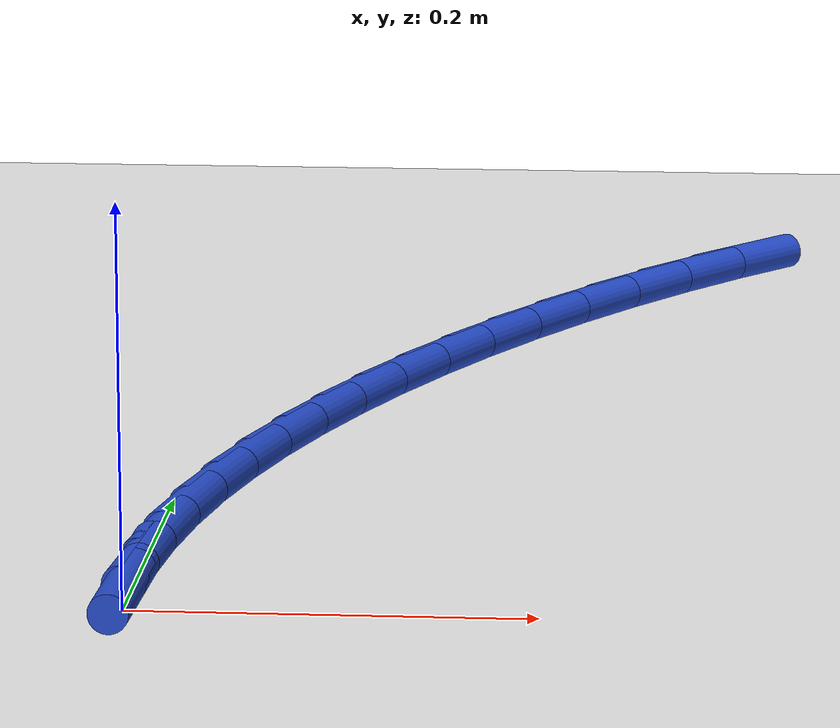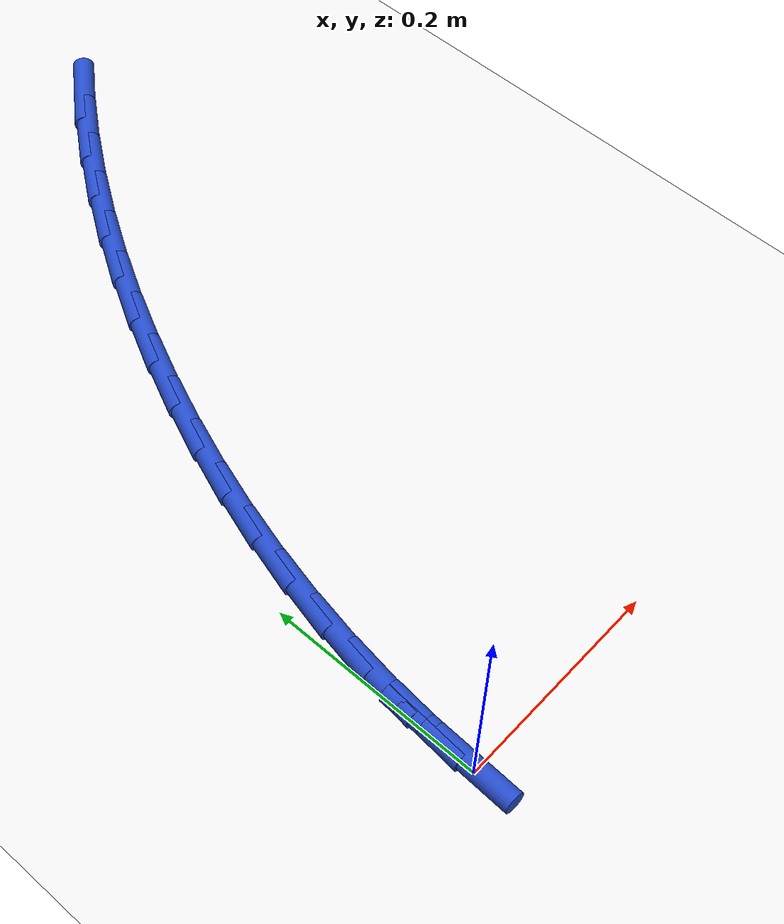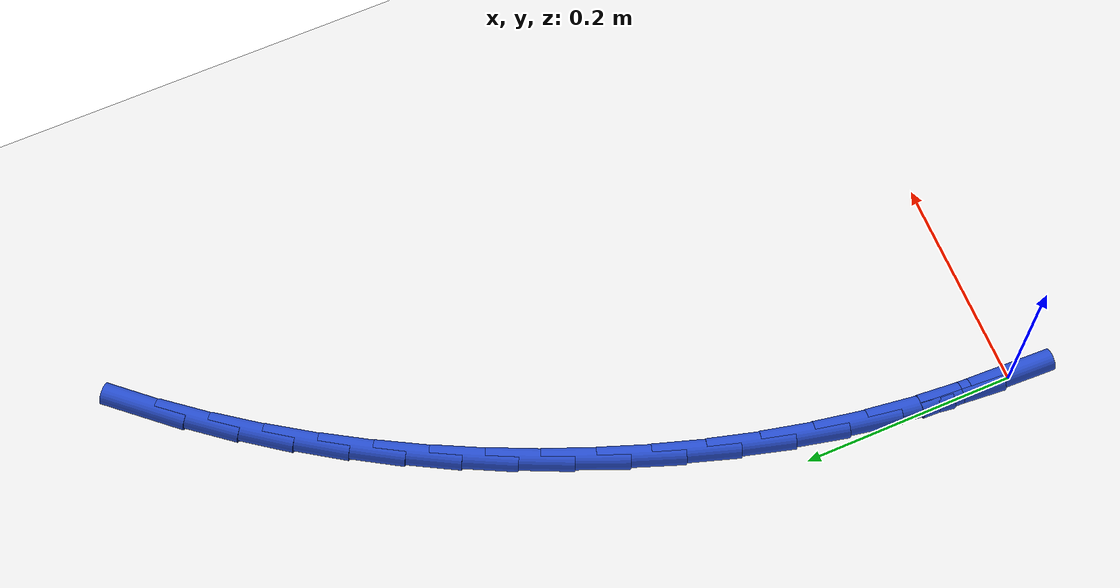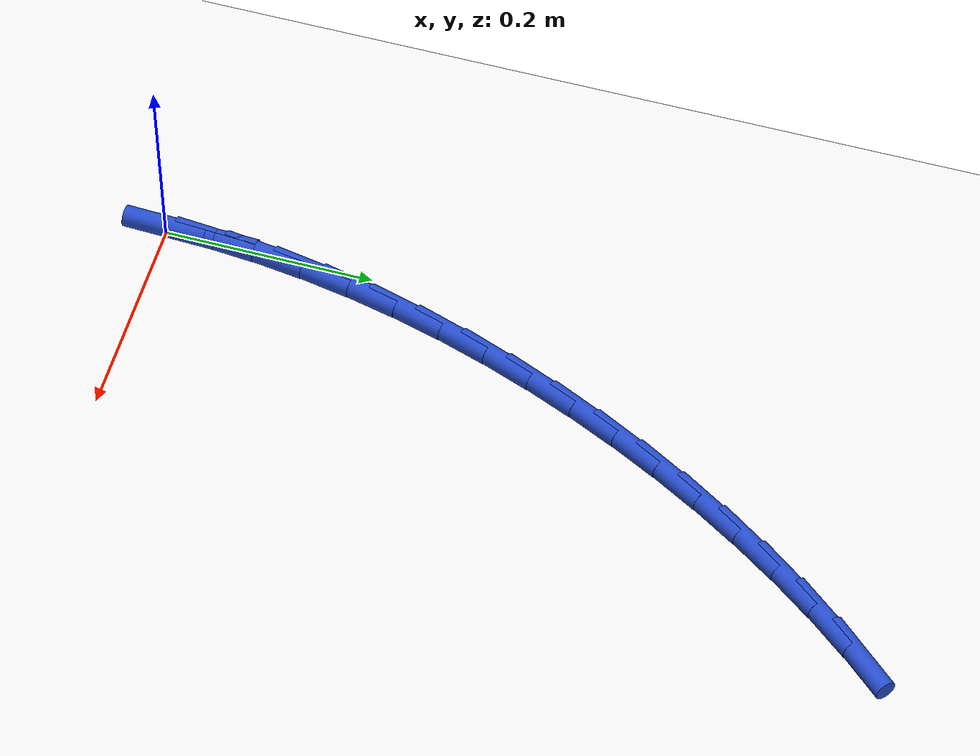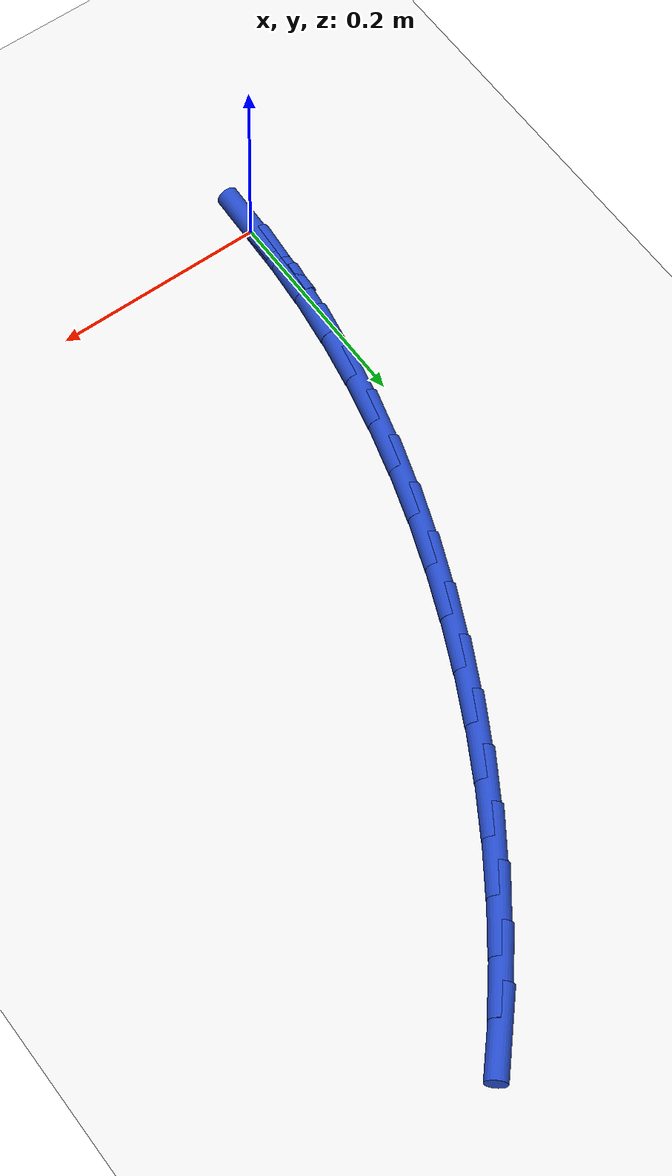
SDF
<sdf version="1.6">
 <world name="default">
  <model name="ground_plane">
   <static>1</static>
   <link name="link">
    <collision name="collision">
     <geometry><plane><normal>0 0 1</normal><size>100 100</size></plane></geometry>
     <surface><friction><ode><mu>100</mu><mu2>50</mu2></ode></friction></surface>
    </collision>
    <visual name="visual">
     <cast_shadows>0</cast_shadows>
     <geometry><plane><normal>0 0 1</normal><size>100 100</size></plane></geometry>
     <material>
      <script><uri>file://media/materials/scripts/gazebo.material</uri><name>Gazebo/WhiteGlow</name></script>
     </material>
    </visual>
   </link>
  </model>
  <model name="line">
   <link name="link_0">
    <pose>-1.5612511283791264e-17 2.7755575615628914e-17 0.01 0 1.57 1.5340336237660577</pose>
    <collision name="collision">
     <geometry><cylinder><radius>0.01</radius><length>0.08</length></cylinder></geometry>
    </collision>
    <visual name="visual">
     <material>
      <script><name>Gazebo/Blue</name><uri>file://media/materials/scripts/gazebo.material</uri></script>
     </material>
     <geometry><cylinder><radius>0.01</radius><length>0.08</length></cylinder></geometry>
    </visual>
   </link>
   <link name="link_1">
    <pose>0.001806210534411196 0.04910946738691039 0.01 0 1.57 1.4845924661843406</pose>
    <collision name="collision">
     <geometry><cylinder><radius>0.01</radius><length>0.08</length></cylinder></geometry>
    </collision>
    <visual name="visual">
     <material>
      <script><name>Gazebo/Blue</name><uri>file://media/materials/scripts/gazebo.material</uri></script>
     </material>
     <geometry><cylinder><radius>0.01</radius><length>0.08</length></cylinder></geometry>
    </visual>
   </link>
   <link name="link_2">
    <pose>0.006025018215612498 0.0979280740659101 0.01 0 1.57 1.4364262405469406</pose>
    <collision name="collision">
     <geometry><cylinder><radius>0.01</radius><length>0.08</length></cylinder></geometry>
    </collision>
    <visual name="visual">
     <material>
      <script><name>Gazebo/Blue</name><uri>file://media/materials/scripts/gazebo.material</uri></script>
     </material>
     <geometry><cylinder><radius>0.01</radius><length>0.08</length></cylinder></geometry>
    </visual>
   </link>
   <link name="link_3">
    <pose>0.01258066853368429 0.14642211123359594 0.01 0 1.57 1.389640378000195</pose>
    <collision name="collision">
     <geometry><cylinder><radius>0.01</radius><length>0.08</length></cylinder></geometry>
    </collision>
    <visual name="visual">
     <material>
      <script><name>Gazebo/Blue</name><uri>file://media/materials/scripts/gazebo.material</uri></script>
     </material>
     <geometry><cylinder><radius>0.01</radius><length>0.08</length></cylinder></geometry>
    </visual>
   </link>
   <link name="link_4">
    <pose>0.021397406978706967 0.19455787008656475 0.01 0 1.57 1.3443101391814638</pose>
    <collision name="collision">
     <geometry><cylinder><radius>0.01</radius><length>0.08</length></cylinder></geometry>
    </collision>
    <visual name="visual">
     <material>
      <script><name>Gazebo/Blue</name><uri>file://media/materials/scripts/gazebo.material</uri></script>
     </material>
     <geometry><cylinder><radius>0.01</radius><length>0.08</length></cylinder></geometry>
    </visual>
   </link>
   <link name="link_5">
    <pose>0.03239947904076093 0.24230164182141323 0.01 0 1.57 1.3004824954389544</pose>
    <collision name="collision">
     <geometry><cylinder><radius>0.01</radius><length>0.08</length></cylinder></geometry>
    </collision>
    <visual name="visual">
     <material>
      <script><name>Gazebo/Blue</name><uri>file://media/materials/scripts/gazebo.material</uri></script>
     </material>
     <geometry><cylinder><radius>0.01</radius><length>0.08</length></cylinder></geometry>
    </visual>
   </link>
   <link name="link_6">
    <pose>0.04551113020992659 0.2896197176347382 0.01 0 1.57 1.2581787716653268</pose>
    <collision name="collision">
     <geometry><cylinder><radius>0.01</radius><length>0.08</length></cylinder></geometry>
    </collision>
    <visual name="visual">
     <material>
      <script><name>Gazebo/Blue</name><uri>file://media/materials/scripts/gazebo.material</uri></script>
     </material>
     <geometry><cylinder><radius>0.01</radius><length>0.08</length></cylinder></geometry>
    </visual>
   </link>
   <link name="link_7">
    <pose>0.06065660597628432 0.3364783887231364 0.01 0 1.57 1.2173977443518147</pose>
    <collision name="collision">
     <geometry><cylinder><radius>0.01</radius><length>0.08</length></cylinder></geometry>
    </collision>
    <visual name="visual">
     <material>
      <script><name>Gazebo/Blue</name><uri>file://media/materials/scripts/gazebo.material</uri></script>
     </material>
     <geometry><cylinder><radius>0.01</radius><length>0.08</length></cylinder></geometry>
    </visual>
   </link>
   <link name="link_8">
    <pose>0.07776015182991455 0.38284394628320484 0.01 0 1.57 1.178118927013361</pose>
    <collision name="collision">
     <geometry><cylinder><radius>0.01</radius><length>0.08</length></cylinder></geometry>
    </collision>
    <visual name="visual">
     <material>
      <script><name>Gazebo/Blue</name><uri>file://media/materials/scripts/gazebo.material</uri></script>
     </material>
     <geometry><cylinder><radius>0.01</radius><length>0.08</length></cylinder></geometry>
    </visual>
   </link>
   <link name="link_9">
    <pose>0.09674601326089766 0.4286826815115401 0.01 0 1.57 1.1400669123256677</pose>
    <collision name="collision">
     <geometry><cylinder><radius>0.01</radius><length>0.08</length></cylinder></geometry>
    </collision>
    <visual name="visual">
     <material>
      <script><name>Gazebo/Blue</name><uri>file://media/materials/scripts/gazebo.material</uri></script>
     </material>
     <geometry><cylinder><radius>0.01</radius><length>0.08</length></cylinder></geometry>
    </visual>
   </link>
   <link name="link_10">
    <pose>0.1175456132553554 0.47394799593618836 0.01 0 1.57 1.1017952948312875</pose>
    <collision name="collision">
     <geometry><cylinder><radius>0.01</radius><length>0.08</length></cylinder></geometry>
    </collision>
    <visual name="visual">
     <material>
      <script><name>Gazebo/Blue</name><uri>file://media/materials/scripts/gazebo.material</uri></script>
     </material>
     <geometry><cylinder><radius>0.01</radius><length>0.08</length></cylinder></geometry>
    </visual>
   </link>
   <link name="link_11">
    <pose>0.14013092364548493 0.5185204716530416 0.01 0 1.57 1.0626469959545786</pose>
    <collision name="collision">
     <geometry><cylinder><radius>0.01</radius><length>0.08</length></cylinder></geometry>
    </collision>
    <visual name="visual">
     <material>
      <script><name>Gazebo/Blue</name><uri>file://media/materials/scripts/gazebo.material</uri></script>
     </material>
     <geometry><cylinder><radius>0.01</radius><length>0.08</length></cylinder></geometry>
    </visual>
   </link>
   <link name="link_12">
    <pose>0.16448814135845993 0.5622551446959256 0.01 0 1.57 1.0224310589619197</pose>
    <collision name="collision">
     <geometry><cylinder><radius>0.01</radius><length>0.08</length></cylinder></geometry>
    </collision>
    <visual name="visual">
     <material>
      <script><name>Gazebo/Blue</name><uri>file://media/materials/scripts/gazebo.material</uri></script>
     </material>
     <geometry><cylinder><radius>0.01</radius><length>0.08</length></cylinder></geometry>
    </visual>
   </link>
   <link name="link_13">
    <pose>0.19060347871479333 0.605007023454619 0.01 0 1.57 0.9809618449627048</pose>
    <collision name="collision">
     <geometry><cylinder><radius>0.01</radius><length>0.08</length></cylinder></geometry>
    </collision>
    <visual name="visual">
     <material>
      <script><name>Gazebo/Blue</name><uri>file://media/materials/scripts/gazebo.material</uri></script>
     </material>
     <geometry><cylinder><radius>0.01</radius><length>0.08</length></cylinder></geometry>
    </visual>
   </link>
   <link name="link_14">
    <pose>0.21846314803499808 0.646631116318901 0.01 0 1.57 0.9380595946571773</pose>
    <collision name="collision">
     <geometry><cylinder><radius>0.01</radius><length>0.08</length></cylinder></geometry>
    </collision>
    <visual name="visual">
     <material>
      <script><name>Gazebo/Blue</name><uri>file://media/materials/scripts/gazebo.material</uri></script>
     </material>
     <geometry><cylinder><radius>0.01</radius><length>0.08</length></cylinder></geometry>
    </visual>
   </link>
   <link name="link_15">
    <pose>0.2480533616395871 0.68698243167855 0.01 0 1.57 0.8935524918583924</pose>
    <collision name="collision">
     <geometry><cylinder><radius>0.01</radius><length>0.08</length></cylinder></geometry>
    </collision>
    <visual name="visual">
     <material>
      <script><name>Gazebo/Blue</name><uri>file://media/materials/scripts/gazebo.material</uri></script>
     </material>
     <geometry><cylinder><radius>0.01</radius><length>0.08</length></cylinder></geometry>
    </visual>
   </link>
   <link name="link_16">
    <pose>0.2793603318490733 0.7259159779233446 0.01 0 1.57 0.847279858856683</pose>
    <collision name="collision">
     <geometry><cylinder><radius>0.01</radius><length>0.08</length></cylinder></geometry>
    </collision>
    <visual name="visual">
     <material>
      <script><name>Gazebo/Blue</name><uri>file://media/materials/scripts/gazebo.material</uri></script>
     </material>
     <geometry><cylinder><radius>0.01</radius><length>0.08</length></cylinder></geometry>
    </visual>
   </link>
   <link name="link_141">
    <pose>0.0018176263269812087 0.04908125305137068 0.01 0 1.57 1.533780236675863</pose>
    <collision name="collision">
     <geometry><cylinder><radius>0.01</radius><length>0.08</length></cylinder></geometry>
    </collision>
    <visual name="visual">
     <material>
      <script><name>Gazebo/Blue</name><uri>file://media/materials/scripts/gazebo.material</uri></script>
     </material>
     <geometry><cylinder><radius>0.01</radius><length>0.08</length></cylinder></geometry>
    </visual>
   </link>
  </model>
 </world>
</sdf>
